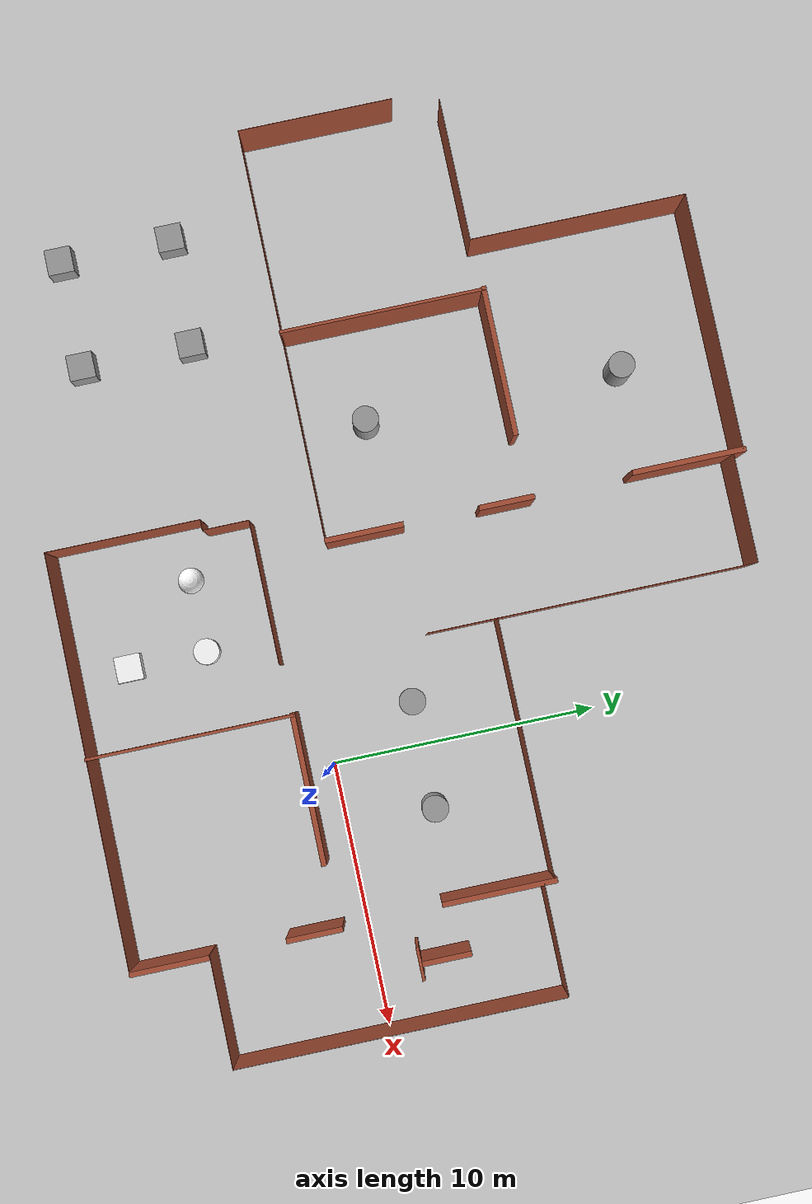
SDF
<sdf version="1.6">
 <world name="default">
  <include><uri>model://ground_plane</uri></include>
  <include><uri>model://sun</uri></include>
  <include>
   <pose>0.079097 -0.839942 0 0 -0 0</pose>
   <scale>1 1 1</scale>
   <uri>model://ANPL_Lab_Extended_0</uri>
  </include>
  <include>
   <pose>-13.886 9.34363 0 0 -0 0</pose>
   <scale>1 1 1</scale>
   <uri>model://ANPL_Lab_Extended_1</uri>
  </include>
  <include><pose>-20.8331 -1.98878 0.5 0 -0 0</pose><scale>1 1 1</scale><uri>model://unit_box</uri></include>
  <include><pose>-16.6927 -2.04585 0.5 0 -0 0</pose><scale>1 1 1</scale><uri>model://unit_box</uri></include>
  <include><pose>-20.8331 -6.27341 0.5 0 -0 0</pose><scale>1 1 1</scale><uri>model://unit_box</uri></include>
  <include><pose>-16.6927 -6.27341 0.5 0 -0 0</pose><scale>1 1 1</scale><uri>model://unit_box</uri></include>
  <include><pose>-5.12882 -5.35988 0 0 -0 0</pose><uri>model://textured_shapes_T</uri></include>
  <plugin name="gazebo_octomap" filename="librotors_gazebo_octomap_plugin.so"/>
 </world>
</sdf>
